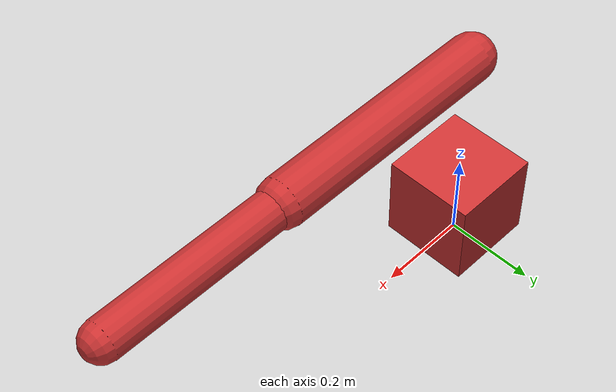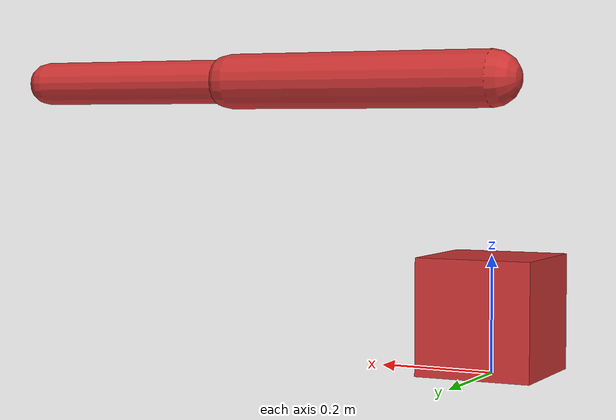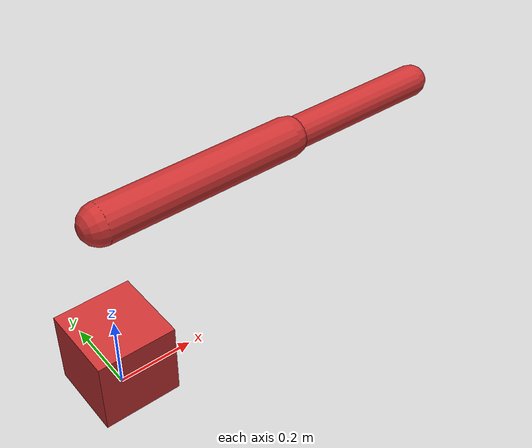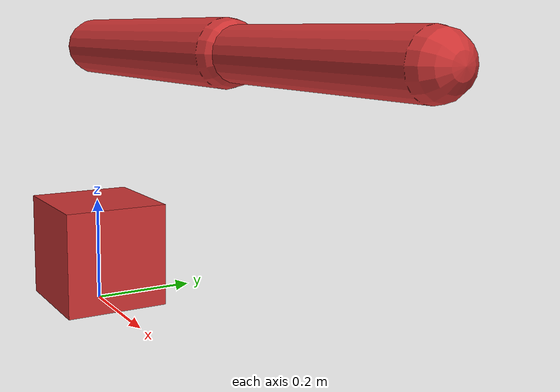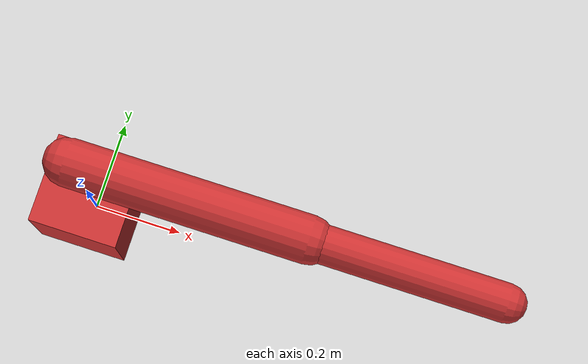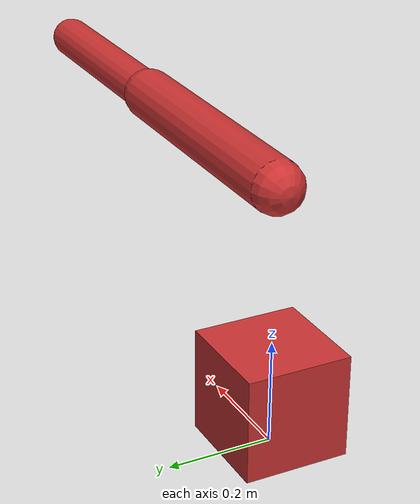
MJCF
<mujoco model="mochi">
  <compiler angle="radian" coordinate="local" meshdir="../assets/meshes/" />

  <!-- global physics parameters -->
  <option gravity="0 0 -9.81" timestep="0.002" integrator="Euler" />

  <!-- load external files -->
  <asset>
    <texture type="skybox" builtin="gradient" rgb1="0.4 0.6 0.8" rgb2="0 0 0" width="32" height="32" />
    <material name="wood" texture="your_texture_file.png" specular="0.5" shininess="0.5" />
    <mesh name="robot_hand" file="hand.stl" />
  </asset>

  <!-- set default attributes for different element types -->
  <!--   now, any joint or geom will be like below -->
  <default>
    <joint type="hinge" axis="0 1 0" limited="true" range="-90 90" />
    <geom type="capsule" rgba="0.8 0.2 0.2 1" size="0.05" />
    <default class="visual">
      <geom contype="0" conaffinity="0" group="1" />
    </default>
  </default>

  <!-- all physical objects in a hierarchy -->
  <worldbody>
    <!-- primary structural element, has mass and position -->
    <body name="base" pos="0 0 0.1">
      <geom type="box" size="0.1 0.1 0.1" />
    </body>

    <body name="upper_arm" pos="0 0 0.5">
      <!-- a body with no joint is welded to its parent -->
      <joint name="shoulder" type="hinge" axis="0 0 1" range="-45 45" />
      <geom type="capsule" fromto="0 0 0 0.5 0 0" size="0.05" />

      <body name="forearm" pos="0.5 0 0">
        <joint name="elbow" type="hinge" axis="0 1 0" range="0 135" />
        <geom type="capsule" fromto="0 0 0 0.4 0 0" size="0.04" />

        <!-- massless, collisionless point fixed to a body, good for attachment points -->
        <site name="hand" pos="0.4 0 0" size="0.01" />
      </body>
    </body>
  </worldbody>

  <!-- apply forces to the model -->
  <actuator>
    <motor name="shoulder_motor" joint="shoulder" gear="100" />
  </actuator>

  <sensor>
    <jointpos name="elbow_angle" joint="elbow" />
    <touch name="hand_touch" site="hand" />
    <accelerometer name="hand_accel" site="hand" />
  </sensor>

  <!-- used for setting simulation states -->
  <keyframe>
    <key name="upright" qpos="0" />
  </keyframe>
</mujoco>
